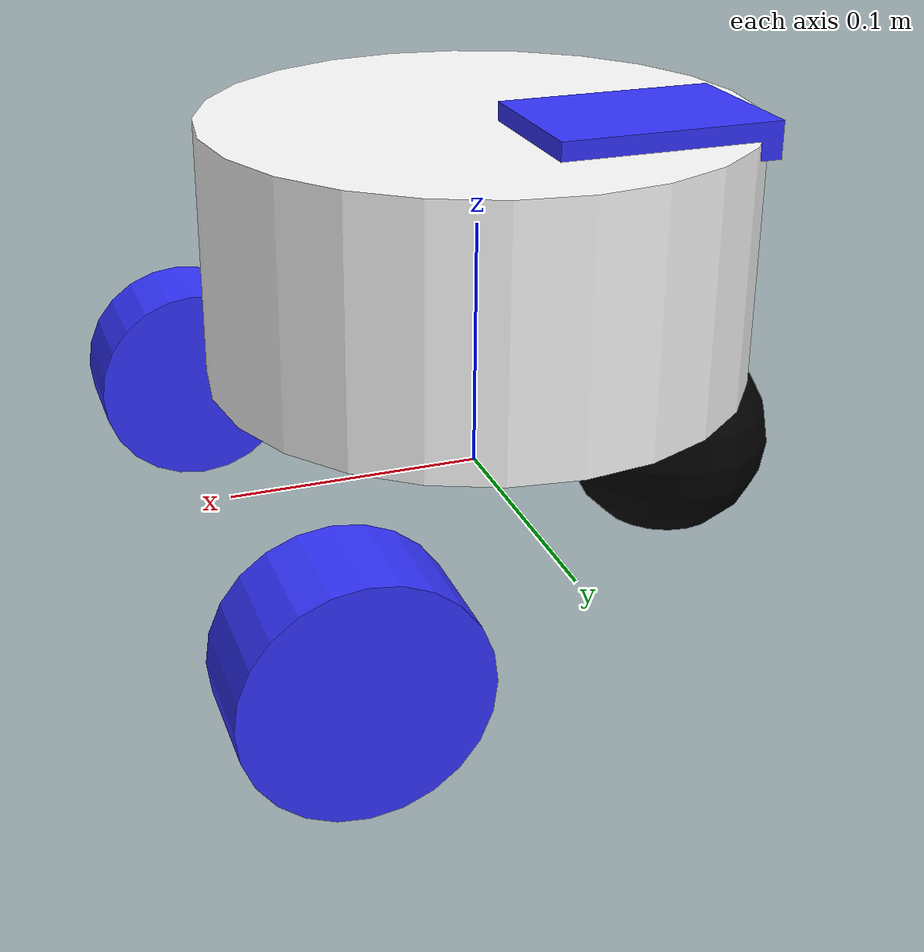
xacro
<?xml version="1.0"?>
<robot xmlns:xacro="http://www.ros.org/wiki/xacro" >

    <xacro:include filename="inertial_macros.xacro"/>

    <material name="white">
        <color rgba="1 1 1 1"/>
    </material>

    <material name="orange">
        <color rgba="1 0.3 0.1 1"/>
    </material>

    <material name="blue">
        <color rgba="0.2 0.2 1 1"/>
    </material>

    <material name="black">
        <color rgba="0 0 0 1"/>
    </material>

    <material name="red">
        <color rgba="1 0 0 1"/>
    </material>

    <link name="base_link">

    </link>

    <joint name="chassis_joint" type="fixed">
        <parent link="base_link"/>
        <child link="chassis"/>
        <origin xyz="-0.105 0 0.0425"/>
    </joint>

    <link name="chassis">
        <visual>
            <origin xyz="0.105 0 0.05" rpy="0 0 0"/>
            <geometry>
                <cylinder radius="0.105" length="0.10" />
            </geometry>
            <material name="white"/>
        </visual>
         <collision>
            <origin xyz="0.105 0 0.05" rpy="0 0 0"/>
            <geometry>
                <cylinder radius="0.105" length="0.10" />
            </geometry>
        </collision>
        <xacro:inertial_cylinder mass="0.8" length="0.1" radius="0.11">
            <origin xyz="0 0 0" rpy="0 0 0"/>
        </xacro:inertial_cylinder>
    </link>
    <gazebo reference="chassis">
        <material>Gazebo/White </material>
    </gazebo>

    <!-- LEFT WHEEL -->
    <joint name="left_wheel_joint" type="continuous">
        <parent link="base_link"/>
        <child link="left_wheel"/>
        <origin xyz="0.09 0.127 0" rpy="-${pi/2} 0 0"/>
        <axis xyz="0 0 1"/>
    </joint>

    <link name="left_wheel">
            <visual>
                <geometry>
                    <cylinder length="0.04" radius="0.0425" />
                </geometry>
                <material name="blue"/>
            </visual>
            <collision>
                <geometry>
                    <cylinder length="0.001" radius="0.0425" />
                </geometry>
            </collision>
            <xacro:inertial_cylinder mass="0.1" length="0.04" radius="0.0425">
            <origin xyz="0 0 0" rpy="0 0 0"/>
            </xacro:inertial_cylinder>
    </link>
    <gazebo reference="left_wheel">
        <material>Gazebo/Blue </material>
    </gazebo>

     <!-- RIGHT WHEEL -->
    <joint name="right_wheel_joint" type="continuous">
        <parent link="base_link"/>
        <child link="right_wheel"/>
        <origin xyz="0.09 -0.127 0" rpy="-${pi/2} 0 0"/>
        <axis xyz="0 0 1"/>
    </joint>
    <link name="right_wheel">
        <visual>
            <geometry>
                <cylinder length="0.04" radius="0.0425" />
            </geometry>
            <material name="blue"/>
        </visual>
        <collision>
            <geometry>
                    <cylinder length="0.001" radius="0.0425" />
            </geometry>
        </collision>
        <xacro:inertial_cylinder mass="0.1" length="0.04" radius="0.0425">
            <origin xyz="0 0 0" rpy="0 0 0"/>
        </xacro:inertial_cylinder>
    </link>
    <gazebo reference="right_wheel">
        <material>Gazebo/Blue </material>
    </gazebo>

     <!-- back CASTER WHEEL move-->
    <joint name="backCaster_wheel_joint" type="fixed">
        <parent link="chassis"/>
        <child link="backCaster_wheel"/>
        <origin xyz="0.02 0 -0.0425" rpy="0 0 0"/>
    </joint>

    <link name="backCaster_wheel">
<visual>
    <geometry>
        <sphere radius="0.0425" />
    </geometry>
    <material name="black"/>
</visual>
<collision>
    <geometry>
        <sphere radius="0.0425" />
    </geometry>
</collision>
<xacro:inertial_sphere mass="0.1" radius="0.0425">
    <origin xyz="0 0 0" rpy="0 0 0"/>
</xacro:inertial_sphere>
    </link>
    <gazebo reference="backCaster_wheel">
        <material>Gazebo/Black </material>
        <mu1 value="0.001"/>
        <mu2 value="0.001"/>
    </gazebo>

      <!-- PI -->
    <joint name="raspi_joint" type="fixed">
         <parent link="chassis"/>
         <child link="raspi_box"/>
         <origin xyz="0.06 0.04 0.1" rpy="0 0 0"/>
    </joint>
    <link name="raspi_box">
        <visual>
            <geometry>
                <box size="0.084 0.057 0.014"/>
            </geometry>
            <material name="blue"/>
        </visual>
        <collision>
           <origin xyz="0.06 -0.04 0.12" rpy="0 0 0"/>
           <geometry>
                <box size="0.084 0.057 0.014"/>
            </geometry>
        </collision>
        <xacro:inertial_box mass="0.1" x="0.084" y="0.057" z="0.014">
            <origin xyz="0 0 0" rpy="0 0 0"/>
        </xacro:inertial_box>
    </link>
    <gazebo reference="raspi_box">
        <material>Gazebo/Black </material>
    </gazebo>
</robot>
